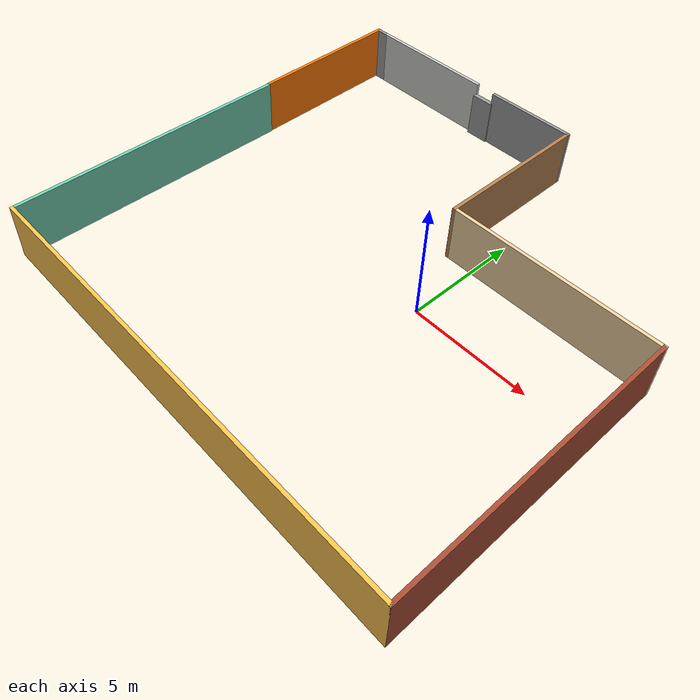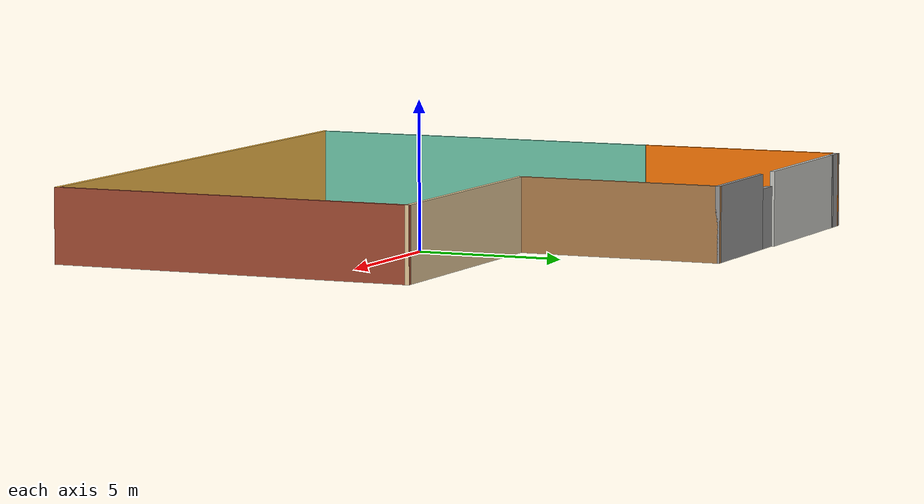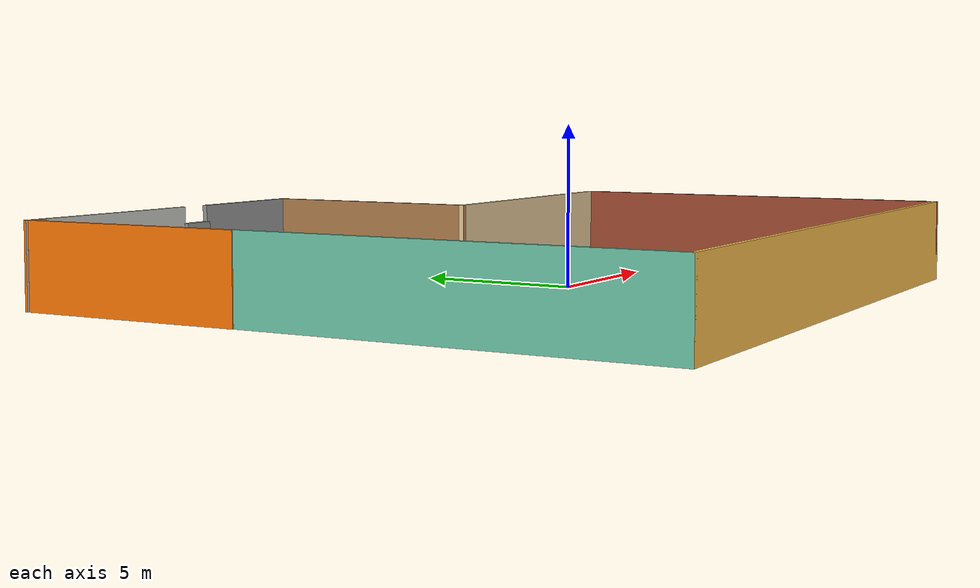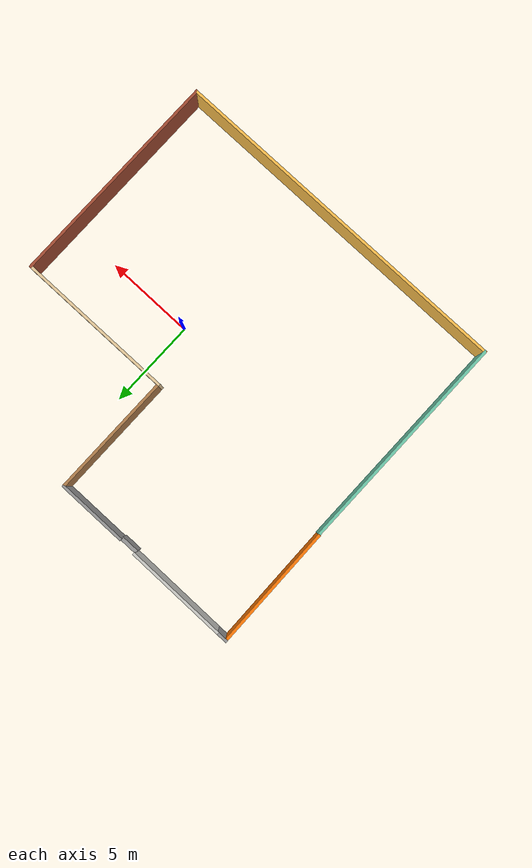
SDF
<?xml version='1.0'?>
<sdf version='1.7'>
  <model name='test_model'>
    <pose>-2.35385 0.400465 0 0 -0 0</pose>
    <link name='Door_2'>
      <collision name='Door_2_Collision'>
        <geometry>
          <box>
            <size>1.022 0.2 2</size>
          </box>
        </geometry>
        <pose>0 0 1 0 -0 0</pose>
      </collision>
      <visual name='Door_2_Visual'>
        <pose>0 0 1 0 -0 0</pose>
        <geometry>
          <box>
            <size>1.022 0.2 2</size>
          </box>
        </geometry>
        <material>
          <script>
            <uri>file://media/materials/scripts/gazebo.material</uri>
            <name>Gazebo/Grey</name>
          </script>
        </material>
      </visual>
      <pose>-3.23335 9.55537 0 0 -0 0</pose>
    </link>
    <link name='Wall_26'>
      <collision name='Wall_26_Collision'>
        <geometry>
          <box>
            <size>12.5 0.15 2.5</size>
          </box>
        </geometry>
        <pose>0 0 1.25 0 -0 0</pose>
      </collision>
      <visual name='Wall_26_Visual'>
        <pose>0 0 1.25 0 -0 0</pose>
        <geometry>
          <box>
            <size>12.5 0.15 2.5</size>
          </box>
        </geometry>
        <material>
          <script>
            <uri>file://media/materials/scripts/gazebo.material</uri>
            <name>Gazebo/Grey</name>
          </script>
          <ambient>0.435294 0.796078 0.67451 1</ambient>
        </material>
        <meta>
          <layer>0</layer>
        </meta>
      </visual>
      <pose>-9.86569 -3.51348 0 0 -0 -1.5708</pose>
    </link>
    <link name='Wall_27'>
      <collision name='Wall_27_Collision'>
        <geometry>
          <box>
            <size>20 0.15 2.5</size>
          </box>
        </geometry>
        <pose>0 0 1.25 0 -0 0</pose>
      </collision>
      <visual name='Wall_27_Visual'>
        <pose>0 0 1.25 0 -0 0</pose>
        <geometry>
          <box>
            <size>20 0.15 2.5</size>
          </box>
        </geometry>
        <material>
          <script>
            <uri>file://media/materials/scripts/gazebo.material</uri>
            <name>Gazebo/Grey</name>
          </script>
          <ambient>1 0.764706 0.305882 1</ambient>
        </material>
        <meta>
          <layer>0</layer>
        </meta>
      </visual>
      <pose>0.05931 -9.68848 0 0 -0 0</pose>
    </link>
    <link name='Wall_28'>
      <collision name='Wall_28_Collision'>
        <geometry>
          <box>
            <size>12.5 0.15 2.5</size>
          </box>
        </geometry>
        <pose>0 0 1.25 0 -0 0</pose>
      </collision>
      <visual name='Wall_28_Visual'>
        <pose>0 0 1.25 0 -0 0</pose>
        <geometry>
          <box>
            <size>12.5 0.15 2.5</size>
          </box>
        </geometry>
        <material>
          <script>
            <uri>file://media/materials/scripts/gazebo.material</uri>
            <name>Gazebo/Bricks</name>
          </script>
          <ambient>0.996078 0.47451 0.0196078 1</ambient>
        </material>
        <meta>
          <layer>0</layer>
        </meta>
      </visual>
      <pose>9.98431 -3.51348 0 0 -0 1.5708</pose>
    </link>
    <link name='Wall_29'>
      <collision name='Wall_29_Collision'>
        <geometry>
          <box>
            <size>9 0.15 2.5</size>
          </box>
        </geometry>
        <pose>0 0 1.25 0 -0 0</pose>
      </collision>
      <visual name='Wall_29_Visual'>
        <pose>0 0 1.25 0 -0 0</pose>
        <geometry>
          <box>
            <size>9 0.15 2.5</size>
          </box>
        </geometry>
        <material>
          <script>
            <uri>file://media/materials/scripts/gazebo.material</uri>
            <name>Gazebo/Grey</name>
          </script>
          <ambient>0.921569 0.807843 0.615686 1</ambient>
        </material>
        <meta>
          <layer>0</layer>
        </meta>
      </visual>
      <pose>5.55931 2.66152 0 0 -0 3.14159</pose>
    </link>
    <link name='Wall_30'>
      <collision name='Wall_30_Collision'>
        <geometry>
          <box>
            <size>7.08137 0.15 2.5</size>
          </box>
        </geometry>
        <pose>0 0 1.25 0 -0 0</pose>
      </collision>
      <visual name='Wall_30_Visual'>
        <pose>0 0 1.25 0 -0 0</pose>
        <geometry>
          <box>
            <size>7.08137 0.15 2.5</size>
          </box>
        </geometry>
        <material>
          <script>
            <uri>file://media/materials/scripts/gazebo.material</uri>
            <name>Gazebo/Wood</name>
          </script>
          <ambient>1 1 1 1</ambient>
        </material>
        <meta>
          <layer>0</layer>
        </meta>
      </visual>
      <pose>1.13431 6.12721 0 0 -0 1.5708</pose>
    </link>
    <link name='Wall_34'>
      <collision name='Wall_34_Collision'>
        <geometry>
          <box>
            <size>4 0.15 2.5</size>
          </box>
        </geometry>
        <pose>0 0 1.25 0 -0 0</pose>
      </collision>
      <visual name='Wall_34_Visual'>
        <pose>0 0 1.25 0 -0 0</pose>
        <geometry>
          <box>
            <size>4 0.15 2.5</size>
          </box>
        </geometry>
        <material>
          <script>
            <uri>file://media/materials/scripts/gazebo.material</uri>
            <name>Gazebo/Grey</name>
          </script>
          <ambient>1 1 1 1</ambient>
        </material>
        <meta>
          <layer>0</layer>
        </meta>
      </visual>
      <pose>-0.79069 9.59289 0 0 -0 3.14159</pose>
    </link>
    <link name='Wall_36'>
      <collision name='Wall_36_Collision'>
        <geometry>
          <box>
            <size>5.76696 0.15 2.5</size>
          </box>
        </geometry>
        <pose>0 0 1.25 0 -0 0</pose>
      </collision>
      <visual name='Wall_36_Visual'>
        <pose>0 0 1.25 0 -0 0</pose>
        <geometry>
          <box>
            <size>5.76696 0.15 2.5</size>
          </box>
        </geometry>
        <material>
          <script>
            <uri>file://media/materials/scripts/gazebo.material</uri>
            <name>Gazebo/CeilingTiled</name>
          </script>
          <ambient>1 0.764706 0.305882 1</ambient>
        </material>
        <meta>
          <layer>0</layer>
        </meta>
      </visual>
      <pose>-6.57496 9.67463 0 0 -0 3.13698</pose>
    </link>
    <link name='Wall_37'>
      <collision name='Wall_37_Collision'>
        <geometry>
          <box>
            <size>0.75 0.15 2.5</size>
          </box>
        </geometry>
        <pose>0 0 1.25 0 -0 0</pose>
      </collision>
      <visual name='Wall_37_Visual'>
        <pose>0 0 1.25 0 -0 0</pose>
        <geometry>
          <box>
            <size>0.75 0.15 2.5</size>
          </box>
        </geometry>
        <material>
          <script>
            <uri>file://media/materials/scripts/gazebo.material</uri>
            <name>Gazebo/Grey</name>
          </script>
          <ambient>1 1 1 1</ambient>
        </material>
        <meta>
          <layer>0</layer>
        </meta>
      </visual>
      <pose>-9.6834 9.68758 0 0 -0 3.14159</pose>
    </link>
    <link name='Wall_38'>
      <collision name='Wall_38_Collision'>
        <geometry>
          <box>
            <size>7.05682 0.15 2.5</size>
          </box>
        </geometry>
        <pose>0 0 1.25 0 -0 0</pose>
      </collision>
      <visual name='Wall_38_Visual'>
        <pose>0 0 1.25 0 -0 0</pose>
        <geometry>
          <box>
            <size>7.05682 0.15 2.5</size>
          </box>
        </geometry>
        <material>
          <script>
            <uri>file://media/materials/scripts/gazebo.material</uri>
            <name>Gazebo/Grey</name>
          </script>
          <ambient>0.996078 0.47451 0.0196078 1</ambient>
        </material>
        <meta>
          <layer>0</layer>
        </meta>
      </visual>
      <pose>-9.9414 6.23442 0 0 -0 -1.55863</pose>
    </link>
    <static>1</static>
  </model>
</sdf>
